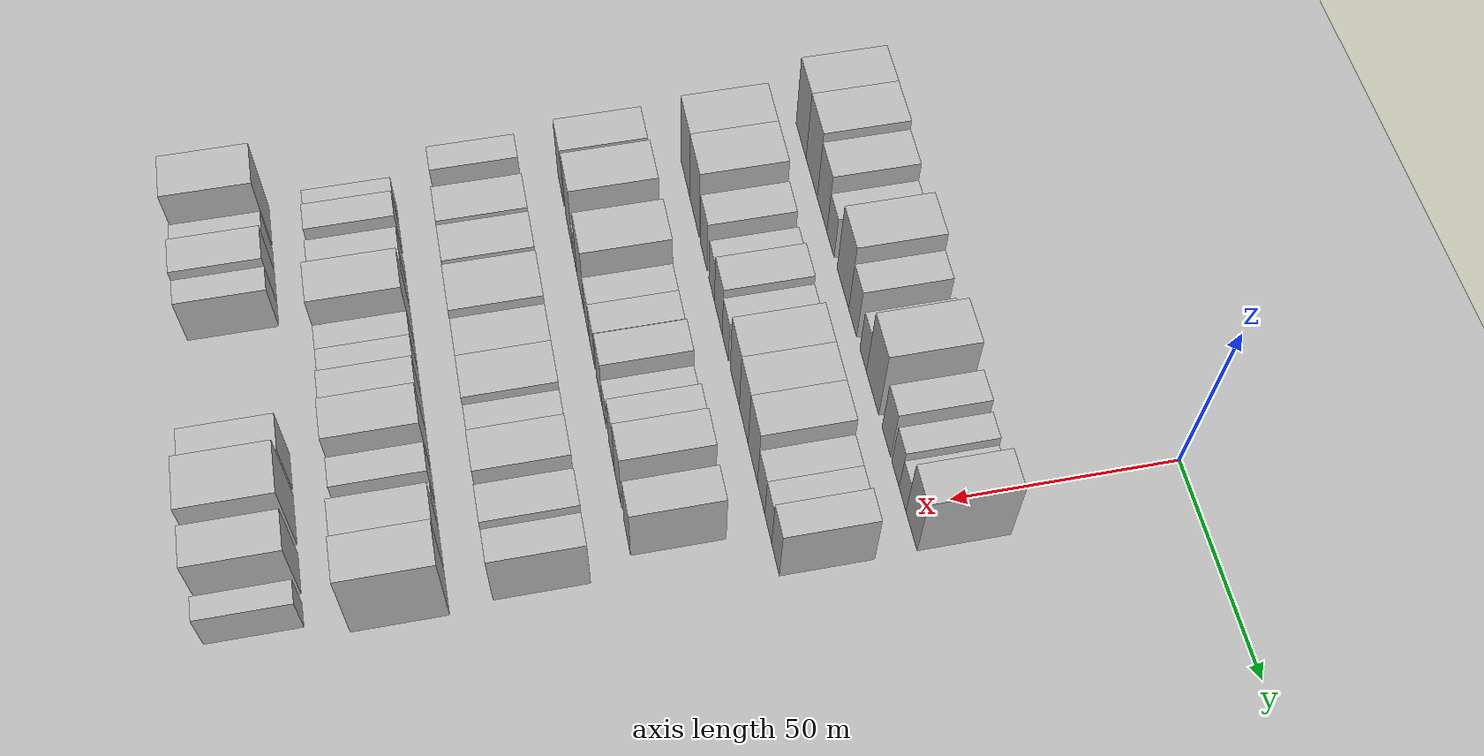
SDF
<sdf version="1.6">
 <world name="default">
  <include><name>ground_plane_1</name><uri>model://HANNAS_ground_plane</uri></include>
  <include>
   <name>ground_plane_2</name>
   <uri>model://HANNAS_ground_plane</uri>
   <pose>100 0 0  0 0 0</pose>
  </include>
  <model name="building_44">
   <static>1</static>
   <pose>50.0000 -98.3542 0 0.000000 0.000000 0.000000</pose>
   <link name="link">
    <pose>0 0 12.00 0 0 0</pose>
    <collision name="collision"><geometry><box><size>20.0000 10.7092 24.0000</size></box></geometry></collision>
    <visual name="visual">
     <cast_shadows>0</cast_shadows>
     <geometry><box><size>20.0000 10.7092 24.0000</size></box></geometry>
     <material>
      <script>
       <uri>model://HANNAS_wall/materials/scripts</uri>
       <uri>model://HANNAS_wall/materials/textures</uri>
       <name>vrc/HANNAS_wall</name>
      </script>
     </material>
    </visual>
   </link>
  </model>
  <model name="building_45">
   <static>1</static>
   <pose>50.0000 -87.1570 0 0.000000 0.000000 0.000000</pose>
   <link name="link">
    <pose>0 0 12.00 0 0 0</pose>
    <collision name="collision"><geometry><box><size>20.0000 11.6851 24.0000</size></box></geometry></collision>
    <visual name="visual">
     <cast_shadows>0</cast_shadows>
     <geometry><box><size>20.0000 11.6851 24.0000</size></box></geometry>
     <material>
      <script>
       <uri>model://HANNAS_wall/materials/scripts</uri>
       <uri>model://HANNAS_wall/materials/textures</uri>
       <name>vrc/HANNAS_wall</name>
      </script>
     </material>
    </visual>
   </link>
  </model>
  <model name="building_46">
   <static>1</static>
   <pose>50.0000 -76.3890 0 0.000000 0.000000 0.000000</pose>
   <link name="link">
    <pose>0 0 10.50 0 0 0</pose>
    <collision name="collision"><geometry><box><size>20.0000 9.8509 21.0000</size></box></geometry></collision>
    <visual name="visual">
     <cast_shadows>0</cast_shadows>
     <geometry><box><size>20.0000 9.8509 21.0000</size></box></geometry>
     <material>
      <script>
       <uri>model://HANNAS_wall/materials/scripts</uri>
       <uri>model://HANNAS_wall/materials/textures</uri>
       <name>vrc/HANNAS_wall</name>
      </script>
     </material>
    </visual>
   </link>
  </model>
  <model name="building_47">
   <static>1</static>
   <pose>50.0000 -67.8489 0 0.000000 0.000000 0.000000</pose>
   <link name="link">
    <pose>0 0 7.50 0 0 0</pose>
    <collision name="collision"><geometry><box><size>20.0000 7.2293 15.0000</size></box></geometry></collision>
    <visual name="visual">
     <cast_shadows>0</cast_shadows>
     <geometry><box><size>20.0000 7.2293 15.0000</size></box></geometry>
     <material>
      <script>
       <uri>model://HANNAS_wall/materials/scripts</uri>
       <uri>model://HANNAS_wall/materials/textures</uri>
       <name>vrc/HANNAS_wall</name>
      </script>
     </material>
    </visual>
   </link>
  </model>
  <model name="building_48">
   <static>1</static>
   <pose>50.0000 -55.6223 0 0.000000 0.000000 0.000000</pose>
   <link name="link">
    <pose>0 0 12.00 0 0 0</pose>
    <collision name="collision"><geometry><box><size>20.0000 11.2239 24.0000</size></box></geometry></collision>
    <visual name="visual">
     <cast_shadows>0</cast_shadows>
     <geometry><box><size>20.0000 11.2239 24.0000</size></box></geometry>
     <material>
      <script>
       <uri>model://HANNAS_wall/materials/scripts</uri>
       <uri>model://HANNAS_wall/materials/textures</uri>
       <name>vrc/HANNAS_wall</name>
      </script>
     </material>
    </visual>
   </link>
  </model>
  <model name="building_49">
   <static>1</static>
   <pose>50.0000 -46.2444 0 0.000000 0.000000 0.000000</pose>
   <link name="link">
    <pose>0 0 9.00 0 0 0</pose>
    <collision name="collision"><geometry><box><size>20.0000 7.5320 18.0000</size></box></geometry></collision>
    <visual name="visual">
     <cast_shadows>0</cast_shadows>
     <geometry><box><size>20.0000 7.5320 18.0000</size></box></geometry>
     <material>
      <script>
       <uri>model://HANNAS_wall/materials/scripts</uri>
       <uri>model://HANNAS_wall/materials/textures</uri>
       <name>vrc/HANNAS_wall</name>
      </script>
     </material>
    </visual>
   </link>
  </model>
  <model name="building_50">
   <static>1</static>
   <pose>50.0000 -36.4417 0 0.000000 0.000000 0.000000</pose>
   <link name="link">
    <pose>0 0 7.50 0 0 0</pose>
    <collision name="collision"><geometry><box><size>20.0000 6.0735 15.0000</size></box></geometry></collision>
    <visual name="visual">
     <cast_shadows>0</cast_shadows>
     <geometry><box><size>20.0000 6.0735 15.0000</size></box></geometry>
     <material>
      <script>
       <uri>model://HANNAS_wall/materials/scripts</uri>
       <uri>model://HANNAS_wall/materials/textures</uri>
       <name>vrc/HANNAS_wall</name>
      </script>
     </material>
    </visual>
   </link>
  </model>
  <model name="building_51">
   <static>1</static>
   <pose>50.0000 -27.8733 0 0.000000 0.000000 0.000000</pose>
   <link name="link">
    <pose>0 0 12.00 0 0 0</pose>
    <collision name="collision"><geometry><box><size>20.0000 11.0633 24.0000</size></box></geometry></collision>
    <visual name="visual">
     <cast_shadows>0</cast_shadows>
     <geometry><box><size>20.0000 11.0633 24.0000</size></box></geometry>
     <material>
      <script>
       <uri>model://HANNAS_wall/materials/scripts</uri>
       <uri>model://HANNAS_wall/materials/textures</uri>
       <name>vrc/HANNAS_wall</name>
      </script>
     </material>
    </visual>
   </link>
  </model>
  <model name="building_52">
   <static>1</static>
   <pose>50.0000 -15.6180 0 0.000000 0.000000 0.000000</pose>
   <link name="link">
    <pose>0 0 9.00 0 0 0</pose>
    <collision name="collision"><geometry><box><size>20.0000 7.4472 18.0000</size></box></geometry></collision>
    <visual name="visual">
     <cast_shadows>0</cast_shadows>
     <geometry><box><size>20.0000 7.4472 18.0000</size></box></geometry>
     <material>
      <script>
       <uri>model://HANNAS_wall/materials/scripts</uri>
       <uri>model://HANNAS_wall/materials/textures</uri>
       <name>vrc/HANNAS_wall</name>
      </script>
     </material>
    </visual>
   </link>
  </model>
  <model name="building_53">
   <static>1</static>
   <pose>50.0000 -7.7616 0 0.000000 0.000000 0.000000</pose>
   <link name="link">
    <pose>0 0 7.50 0 0 0</pose>
    <collision name="collision"><geometry><box><size>20.0000 6.2656 15.0000</size></box></geometry></collision>
    <visual name="visual">
     <cast_shadows>0</cast_shadows>
     <geometry><box><size>20.0000 6.2656 15.0000</size></box></geometry>
     <material>
      <script>
       <uri>model://HANNAS_wall/materials/scripts</uri>
       <uri>model://HANNAS_wall/materials/textures</uri>
       <name>vrc/HANNAS_wall</name>
      </script>
     </material>
    </visual>
   </link>
  </model>
  <model name="building_54">
   <static>1</static>
   <pose>50.0000 -1.7611 0 0.000000 0.000000 0.000000</pose>
   <link name="link">
    <pose>0 0 6.00 0 0 0</pose>
    <collision name="collision"><geometry><box><size>20.0000 5.7353 12.0000</size></box></geometry></collision>
    <visual name="visual">
     <cast_shadows>0</cast_shadows>
     <geometry><box><size>20.0000 5.7353 12.0000</size></box></geometry>
     <material>
      <script>
       <uri>model://HANNAS_wall/materials/scripts</uri>
       <uri>model://HANNAS_wall/materials/textures</uri>
       <name>vrc/HANNAS_wall</name>
      </script>
     </material>
    </visual>
   </link>
  </model>
  <model name="building_55">
   <static>1</static>
   <pose>50.0000 5.7008 0 0.000000 0.000000 0.000000</pose>
   <link name="link">
    <pose>0 0 10.50 0 0 0</pose>
    <collision name="collision"><geometry><box><size>20.0000 9.1887 21.0000</size></box></geometry></collision>
    <visual name="visual">
     <cast_shadows>0</cast_shadows>
     <geometry><box><size>20.0000 9.1887 21.0000</size></box></geometry>
     <material>
      <script>
       <uri>model://HANNAS_wall/materials/scripts</uri>
       <uri>model://HANNAS_wall/materials/textures</uri>
       <name>vrc/HANNAS_wall</name>
      </script>
     </material>
    </visual>
   </link>
  </model>
  <model name="building_154">
   <static>1</static>
   <pose>79.0000 -92.3246 0 0.000000 0.000000 0.000000</pose>
   <link name="link">
    <pose>0 0 12.00 0 0 0</pose>
    <collision name="collision"><geometry><box><size>20.0000 11.0729 24.0000</size></box></geometry></collision>
    <visual name="visual">
     <cast_shadows>0</cast_shadows>
     <geometry><box><size>20.0000 11.0729 24.0000</size></box></geometry>
     <material>
      <script>
       <uri>model://HANNAS_wall/materials/scripts</uri>
       <uri>model://HANNAS_wall/materials/textures</uri>
       <name>vrc/HANNAS_wall</name>
      </script>
     </material>
    </visual>
   </link>
  </model>
  <model name="building_155">
   <static>1</static>
   <pose>79.0000 -81.0688 0 0.000000 0.000000 0.000000</pose>
   <link name="link">
    <pose>0 0 12.00 0 0 0</pose>
    <collision name="collision"><geometry><box><size>20.0000 11.4387 24.0000</size></box></geometry></collision>
    <visual name="visual">
     <cast_shadows>0</cast_shadows>
     <geometry><box><size>20.0000 11.4387 24.0000</size></box></geometry>
     <material>
      <script>
       <uri>model://HANNAS_wall/materials/scripts</uri>
       <uri>model://HANNAS_wall/materials/textures</uri>
       <name>vrc/HANNAS_wall</name>
      </script>
     </material>
    </visual>
   </link>
  </model>
  <model name="building_156">
   <static>1</static>
   <pose>79.0000 -70.1535 0 0.000000 0.000000 0.000000</pose>
   <link name="link">
    <pose>0 0 9.00 0 0 0</pose>
    <collision name="collision"><geometry><box><size>20.0000 8.3920 18.0000</size></box></geometry></collision>
    <visual name="visual">
     <cast_shadows>0</cast_shadows>
     <geometry><box><size>20.0000 8.3920 18.0000</size></box></geometry>
     <material>
      <script>
       <uri>model://HANNAS_wall/materials/scripts</uri>
       <uri>model://HANNAS_wall/materials/textures</uri>
       <name>vrc/HANNAS_wall</name>
      </script>
     </material>
    </visual>
   </link>
  </model>
  <model name="building_157">
   <static>1</static>
   <pose>79.0000 -60.6841 0 0.000000 0.000000 0.000000</pose>
   <link name="link">
    <pose>0 0 7.50 0 0 0</pose>
    <collision name="collision"><geometry><box><size>20.0000 6.5468 15.0000</size></box></geometry></collision>
    <visual name="visual">
     <cast_shadows>0</cast_shadows>
     <geometry><box><size>20.0000 6.5468 15.0000</size></box></geometry>
     <material>
      <script>
       <uri>model://HANNAS_wall/materials/scripts</uri>
       <uri>model://HANNAS_wall/materials/textures</uri>
       <name>vrc/HANNAS_wall</name>
      </script>
     </material>
    </visual>
   </link>
  </model>
  <model name="building_158">
   <static>1</static>
   <pose>79.0000 -53.0304 0 0.000000 0.000000 0.000000</pose>
   <link name="link">
    <pose>0 0 9.00 0 0 0</pose>
    <collision name="collision"><geometry><box><size>20.0000 8.7606 18.0000</size></box></geometry></collision>
    <visual name="visual">
     <cast_shadows>0</cast_shadows>
     <geometry><box><size>20.0000 8.7606 18.0000</size></box></geometry>
     <material>
      <script>
       <uri>model://HANNAS_wall/materials/scripts</uri>
       <uri>model://HANNAS_wall/materials/textures</uri>
       <name>vrc/HANNAS_wall</name>
      </script>
     </material>
    </visual>
   </link>
  </model>
  <model name="building_159">
   <static>1</static>
   <pose>79.0000 -45.2045 0 0.000000 0.000000 0.000000</pose>
   <link name="link">
    <pose>0 0 7.50 0 0 0</pose>
    <collision name="collision"><geometry><box><size>20.0000 6.8911 15.0000</size></box></geometry></collision>
    <visual name="visual">
     <cast_shadows>0</cast_shadows>
     <geometry><box><size>20.0000 6.8911 15.0000</size></box></geometry>
     <material>
      <script>
       <uri>model://HANNAS_wall/materials/scripts</uri>
       <uri>model://HANNAS_wall/materials/textures</uri>
       <name>vrc/HANNAS_wall</name>
      </script>
     </material>
    </visual>
   </link>
  </model>
  <model name="building_160">
   <static>1</static>
   <pose>79.0000 -34.8429 0 0.000000 0.000000 0.000000</pose>
   <link name="link">
    <pose>0 0 10.50 0 0 0</pose>
    <collision name="collision"><geometry><box><size>20.0000 9.8321 21.0000</size></box></geometry></collision>
    <visual name="visual">
     <cast_shadows>0</cast_shadows>
     <geometry><box><size>20.0000 9.8321 21.0000</size></box></geometry>
     <material>
      <script>
       <uri>model://HANNAS_wall/materials/scripts</uri>
       <uri>model://HANNAS_wall/materials/textures</uri>
       <name>vrc/HANNAS_wall</name>
      </script>
     </material>
    </visual>
   </link>
  </model>
  <model name="building_161">
   <static>1</static>
   <pose>79.0000 -25.2623 0 0.000000 0.000000 0.000000</pose>
   <link name="link">
    <pose>0 0 10.50 0 0 0</pose>
    <collision name="collision"><geometry><box><size>20.0000 9.3291 21.0000</size></box></geometry></collision>
    <visual name="visual">
     <cast_shadows>0</cast_shadows>
     <geometry><box><size>20.0000 9.3291 21.0000</size></box></geometry>
     <material>
      <script>
       <uri>model://HANNAS_wall/materials/scripts</uri>
       <uri>model://HANNAS_wall/materials/textures</uri>
       <name>vrc/HANNAS_wall</name>
      </script>
     </material>
    </visual>
   </link>
  </model>
  <model name="building_162">
   <static>1</static>
   <pose>79.0000 -15.7878 0 0.000000 0.000000 0.000000</pose>
   <link name="link">
    <pose>0 0 10.50 0 0 0</pose>
    <collision name="collision"><geometry><box><size>20.0000 9.6199 21.0000</size></box></geometry></collision>
    <visual name="visual">
     <cast_shadows>0</cast_shadows>
     <geometry><box><size>20.0000 9.6199 21.0000</size></box></geometry>
     <material>
      <script>
       <uri>model://HANNAS_wall/materials/scripts</uri>
       <uri>model://HANNAS_wall/materials/textures</uri>
       <name>vrc/HANNAS_wall</name>
      </script>
     </material>
    </visual>
   </link>
  </model>
  <model name="building_163">
   <static>1</static>
   <pose>79.0000 -7.3257 0 0.000000 0.000000 0.000000</pose>
   <link name="link">
    <pose>0 0 7.50 0 0 0</pose>
    <collision name="collision"><geometry><box><size>20.0000 7.3044 15.0000</size></box></geometry></collision>
    <visual name="visual">
     <cast_shadows>0</cast_shadows>
     <geometry><box><size>20.0000 7.3044 15.0000</size></box></geometry>
     <material>
      <script>
       <uri>model://HANNAS_wall/materials/scripts</uri>
       <uri>model://HANNAS_wall/materials/textures</uri>
       <name>vrc/HANNAS_wall</name>
      </script>
     </material>
    </visual>
   </link>
  </model>
  <model name="building_164">
   <static>1</static>
   <pose>79.0000 -0.2682 0 0.000000 0.000000 0.000000</pose>
   <link name="link">
    <pose>0 0 7.50 0 0 0</pose>
    <collision name="collision"><geometry><box><size>20.0000 6.8105 15.0000</size></box></geometry></collision>
    <visual name="visual">
     <cast_shadows>0</cast_shadows>
     <geometry><box><size>20.0000 6.8105 15.0000</size></box></geometry>
     <material>
      <script>
       <uri>model://HANNAS_wall/materials/scripts</uri>
       <uri>model://HANNAS_wall/materials/textures</uri>
       <name>vrc/HANNAS_wall</name>
      </script>
     </material>
    </visual>
   </link>
  </model>
  <model name="building_165">
   <static>1</static>
   <pose>79.0000 6.8495 0 0.000000 0.000000 0.000000</pose>
   <link name="link">
    <pose>0 0 9.00 0 0 0</pose>
    <collision name="collision"><geometry><box><size>20.0000 7.4250 18.0000</size></box></geometry></collision>
    <visual name="visual">
     <cast_shadows>0</cast_shadows>
     <geometry><box><size>20.0000 7.4250 18.0000</size></box></geometry>
     <material>
      <script>
       <uri>model://HANNAS_wall/materials/scripts</uri>
       <uri>model://HANNAS_wall/materials/textures</uri>
       <name>vrc/HANNAS_wall</name>
      </script>
     </material>
    </visual>
   </link>
  </model>
  <model name="building_266">
   <static>1</static>
   <pose>108.0000 -94.3839 0 0.000000 0.000000 0.000000</pose>
   <link name="link">
    <pose>0 0 10.50 0 0 0</pose>
    <collision name="collision"><geometry><box><size>20.0000 9.1395 21.0000</size></box></geometry></collision>
    <visual name="visual">
     <cast_shadows>0</cast_shadows>
     <geometry><box><size>20.0000 9.1395 21.0000</size></box></geometry>
     <material>
      <script>
       <uri>model://HANNAS_wall/materials/scripts</uri>
       <uri>model://HANNAS_wall/materials/textures</uri>
       <name>vrc/HANNAS_wall</name>
      </script>
     </material>
    </visual>
   </link>
  </model>
  <model name="building_267">
   <static>1</static>
   <pose>108.0000 -81.4635 0 0.000000 0.000000 0.000000</pose>
   <link name="link">
    <pose>0 0 12.00 0 0 0</pose>
    <collision name="collision"><geometry><box><size>20.0000 10.7014 24.0000</size></box></geometry></collision>
    <visual name="visual">
     <cast_shadows>0</cast_shadows>
     <geometry><box><size>20.0000 10.7014 24.0000</size></box></geometry>
     <material>
      <script>
       <uri>model://HANNAS_wall/materials/scripts</uri>
       <uri>model://HANNAS_wall/materials/textures</uri>
       <name>vrc/HANNAS_wall</name>
      </script>
     </material>
    </visual>
   </link>
  </model>
  <model name="building_268">
   <static>1</static>
   <pose>108.0000 -73.2701 0 0.000000 0.000000 0.000000</pose>
   <link name="link">
    <pose>0 0 6.00 0 0 0</pose>
    <collision name="collision"><geometry><box><size>20.0000 5.6854 12.0000</size></box></geometry></collision>
    <visual name="visual">
     <cast_shadows>0</cast_shadows>
     <geometry><box><size>20.0000 5.6854 12.0000</size></box></geometry>
     <material>
      <script>
       <uri>model://HANNAS_wall/materials/scripts</uri>
       <uri>model://HANNAS_wall/materials/textures</uri>
       <name>vrc/HANNAS_wall</name>
      </script>
     </material>
    </visual>
   </link>
  </model>
  <model name="building_269">
   <static>1</static>
   <pose>108.0000 -64.9830 0 0.000000 0.000000 0.000000</pose>
   <link name="link">
    <pose>0 0 12.00 0 0 0</pose>
    <collision name="collision"><geometry><box><size>20.0000 10.8887 24.0000</size></box></geometry></collision>
    <visual name="visual">
     <cast_shadows>0</cast_shadows>
     <geometry><box><size>20.0000 10.8887 24.0000</size></box></geometry>
     <material>
      <script>
       <uri>model://HANNAS_wall/materials/scripts</uri>
       <uri>model://HANNAS_wall/materials/textures</uri>
       <name>vrc/HANNAS_wall</name>
      </script>
     </material>
    </visual>
   </link>
  </model>
  <model name="building_270">
   <static>1</static>
   <pose>108.0000 -56.0109 0 0.000000 0.000000 0.000000</pose>
   <link name="link">
    <pose>0 0 7.50 0 0 0</pose>
    <collision name="collision"><geometry><box><size>20.0000 7.0555 15.0000</size></box></geometry></collision>
    <visual name="visual">
     <cast_shadows>0</cast_shadows>
     <geometry><box><size>20.0000 7.0555 15.0000</size></box></geometry>
     <material>
      <script>
       <uri>model://HANNAS_wall/materials/scripts</uri>
       <uri>model://HANNAS_wall/materials/textures</uri>
       <name>vrc/HANNAS_wall</name>
      </script>
     </material>
    </visual>
   </link>
  </model>
  <model name="building_271">
   <static>1</static>
   <pose>108.0000 -48.7577 0 0.000000 0.000000 0.000000</pose>
   <link name="link">
    <pose>0 0 7.50 0 0 0</pose>
    <collision name="collision"><geometry><box><size>20.0000 7.4510 15.0000</size></box></geometry></collision>
    <visual name="visual">
     <cast_shadows>0</cast_shadows>
     <geometry><box><size>20.0000 7.4510 15.0000</size></box></geometry>
     <material>
      <script>
       <uri>model://HANNAS_wall/materials/scripts</uri>
       <uri>model://HANNAS_wall/materials/textures</uri>
       <name>vrc/HANNAS_wall</name>
      </script>
     </material>
    </visual>
   </link>
  </model>
  <model name="building_272">
   <static>1</static>
   <pose>108.0000 -39.0699 0 0.000000 0.000000 0.000000</pose>
   <link name="link">
    <pose>0 0 9.00 0 0 0</pose>
    <collision name="collision"><geometry><box><size>20.0000 7.9245 18.0000</size></box></geometry></collision>
    <visual name="visual">
     <cast_shadows>0</cast_shadows>
     <geometry><box><size>20.0000 7.9245 18.0000</size></box></geometry>
     <material>
      <script>
       <uri>model://HANNAS_wall/materials/scripts</uri>
       <uri>model://HANNAS_wall/materials/textures</uri>
       <name>vrc/HANNAS_wall</name>
      </script>
     </material>
    </visual>
   </link>
  </model>
  <model name="building_273">
   <static>1</static>
   <pose>108.0000 -32.5242 0 0.000000 0.000000 0.000000</pose>
   <link name="link">
    <pose>0 0 6.00 0 0 0</pose>
    <collision name="collision"><geometry><box><size>20.0000 5.1668 12.0000</size></box></geometry></collision>
    <visual name="visual">
     <cast_shadows>0</cast_shadows>
     <geometry><box><size>20.0000 5.1668 12.0000</size></box></geometry>
     <material>
      <script>
       <uri>model://HANNAS_wall/materials/scripts</uri>
       <uri>model://HANNAS_wall/materials/textures</uri>
       <name>vrc/HANNAS_wall</name>
      </script>
     </material>
    </visual>
   </link>
  </model>
  <model name="building_274">
   <static>1</static>
   <pose>108.0000 -23.1329 0 0.000000 0.000000 0.000000</pose>
   <link name="link">
    <pose>0 0 9.00 0 0 0</pose>
    <collision name="collision"><geometry><box><size>20.0000 7.6159 18.0000</size></box></geometry></collision>
    <visual name="visual">
     <cast_shadows>0</cast_shadows>
     <geometry><box><size>20.0000 7.6159 18.0000</size></box></geometry>
     <material>
      <script>
       <uri>model://HANNAS_wall/materials/scripts</uri>
       <uri>model://HANNAS_wall/materials/textures</uri>
       <name>vrc/HANNAS_wall</name>
      </script>
     </material>
    </visual>
   </link>
  </model>
  <model name="building_275">
   <static>1</static>
   <pose>108.0000 -14.9984 0 0.000000 0.000000 0.000000</pose>
   <link name="link">
    <pose>0 0 10.50 0 0 0</pose>
    <collision name="collision"><geometry><box><size>20.0000 8.6531 21.0000</size></box></geometry></collision>
    <visual name="visual">
     <cast_shadows>0</cast_shadows>
     <geometry><box><size>20.0000 8.6531 21.0000</size></box></geometry>
     <material>
      <script>
       <uri>model://HANNAS_wall/materials/scripts</uri>
       <uri>model://HANNAS_wall/materials/textures</uri>
       <name>vrc/HANNAS_wall</name>
      </script>
     </material>
    </visual>
   </link>
  </model>
  <model name="building_276">
   <static>1</static>
   <pose>108.0000 -3.6330 0 0.000000 0.000000 0.000000</pose>
   <link name="link">
    <pose>0 0 9.00 0 0 0</pose>
    <collision name="collision"><geometry><box><size>20.0000 8.0776 18.0000</size></box></geometry></collision>
    <visual name="visual">
     <cast_shadows>0</cast_shadows>
     <geometry><box><size>20.0000 8.0776 18.0000</size></box></geometry>
     <material>
      <script>
       <uri>model://HANNAS_wall/materials/scripts</uri>
       <uri>model://HANNAS_wall/materials/textures</uri>
       <name>vrc/HANNAS_wall</name>
      </script>
     </material>
    </visual>
   </link>
  </model>
  <model name="building_374">
   <static>1</static>
   <pose>137.0000 -97.9630 0 0.000000 0.000000 0.000000</pose>
   <link name="link">
    <pose>0 0 7.50 0 0 0</pose>
    <collision name="collision"><geometry><box><size>20.0000 6.7368 15.0000</size></box></geometry></collision>
    <visual name="visual">
     <cast_shadows>0</cast_shadows>
     <geometry><box><size>20.0000 6.7368 15.0000</size></box></geometry>
     <material>
      <script>
       <uri>model://HANNAS_wall/materials/scripts</uri>
       <uri>model://HANNAS_wall/materials/textures</uri>
       <name>vrc/HANNAS_wall</name>
      </script>
     </material>
    </visual>
   </link>
  </model>
  <model name="building_375">
   <static>1</static>
   <pose>137.0000 -88.9194 0 0.000000 0.000000 0.000000</pose>
   <link name="link">
    <pose>0 0 6.00 0 0 0</pose>
    <collision name="collision"><geometry><box><size>20.0000 5.3505 12.0000</size></box></geometry></collision>
    <visual name="visual">
     <cast_shadows>0</cast_shadows>
     <geometry><box><size>20.0000 5.3505 12.0000</size></box></geometry>
     <material>
      <script>
       <uri>model://HANNAS_wall/materials/scripts</uri>
       <uri>model://HANNAS_wall/materials/textures</uri>
       <name>vrc/HANNAS_wall</name>
      </script>
     </material>
    </visual>
   </link>
  </model>
  <model name="building_376">
   <static>1</static>
   <pose>137.0000 -80.5270 0 0.000000 0.000000 0.000000</pose>
   <link name="link">
    <pose>0 0 10.50 0 0 0</pose>
    <collision name="collision"><geometry><box><size>20.0000 9.4343 21.0000</size></box></geometry></collision>
    <visual name="visual">
     <cast_shadows>0</cast_shadows>
     <geometry><box><size>20.0000 9.4343 21.0000</size></box></geometry>
     <material>
      <script>
       <uri>model://HANNAS_wall/materials/scripts</uri>
       <uri>model://HANNAS_wall/materials/textures</uri>
       <name>vrc/HANNAS_wall</name>
      </script>
     </material>
    </visual>
   </link>
  </model>
  <model name="building_377">
   <static>1</static>
   <pose>137.0000 -70.0229 0 0.000000 0.000000 0.000000</pose>
   <link name="link">
    <pose>0 0 10.50 0 0 0</pose>
    <collision name="collision"><geometry><box><size>20.0000 9.5740 21.0000</size></box></geometry></collision>
    <visual name="visual">
     <cast_shadows>0</cast_shadows>
     <geometry><box><size>20.0000 9.5740 21.0000</size></box></geometry>
     <material>
      <script>
       <uri>model://HANNAS_wall/materials/scripts</uri>
       <uri>model://HANNAS_wall/materials/textures</uri>
       <name>vrc/HANNAS_wall</name>
      </script>
     </material>
    </visual>
   </link>
  </model>
  <model name="building_378">
   <static>1</static>
   <pose>137.0000 -56.3524 0 0.000000 0.000000 0.000000</pose>
   <link name="link">
    <pose>0 0 12.00 0 0 0</pose>
    <collision name="collision"><geometry><box><size>20.0000 11.7671 24.0000</size></box></geometry></collision>
    <visual name="visual">
     <cast_shadows>0</cast_shadows>
     <geometry><box><size>20.0000 11.7671 24.0000</size></box></geometry>
     <material>
      <script>
       <uri>model://HANNAS_wall/materials/scripts</uri>
       <uri>model://HANNAS_wall/materials/textures</uri>
       <name>vrc/HANNAS_wall</name>
      </script>
     </material>
    </visual>
   </link>
  </model>
  <model name="building_379">
   <static>1</static>
   <pose>137.0000 -45.8564 0 0.000000 0.000000 0.000000</pose>
   <link name="link">
    <pose>0 0 10.50 0 0 0</pose>
    <collision name="collision"><geometry><box><size>20.0000 9.2249 21.0000</size></box></geometry></collision>
    <visual name="visual">
     <cast_shadows>0</cast_shadows>
     <geometry><box><size>20.0000 9.2249 21.0000</size></box></geometry>
     <material>
      <script>
       <uri>model://HANNAS_wall/materials/scripts</uri>
       <uri>model://HANNAS_wall/materials/textures</uri>
       <name>vrc/HANNAS_wall</name>
      </script>
     </material>
    </visual>
   </link>
  </model>
  <model name="building_380">
   <static>1</static>
   <pose>137.0000 -36.1352 0 0.000000 0.000000 0.000000</pose>
   <link name="link">
    <pose>0 0 10.50 0 0 0</pose>
    <collision name="collision"><geometry><box><size>20.0000 10.2176 21.0000</size></box></geometry></collision>
    <visual name="visual">
     <cast_shadows>0</cast_shadows>
     <geometry><box><size>20.0000 10.2176 21.0000</size></box></geometry>
     <material>
      <script>
       <uri>model://HANNAS_wall/materials/scripts</uri>
       <uri>model://HANNAS_wall/materials/textures</uri>
       <name>vrc/HANNAS_wall</name>
      </script>
     </material>
    </visual>
   </link>
  </model>
  <model name="building_381">
   <static>1</static>
   <pose>137.0000 -27.2197 0 0.000000 0.000000 0.000000</pose>
   <link name="link">
    <pose>0 0 9.00 0 0 0</pose>
    <collision name="collision"><geometry><box><size>20.0000 7.6134 18.0000</size></box></geometry></collision>
    <visual name="visual">
     <cast_shadows>0</cast_shadows>
     <geometry><box><size>20.0000 7.6134 18.0000</size></box></geometry>
     <material>
      <script>
       <uri>model://HANNAS_wall/materials/scripts</uri>
       <uri>model://HANNAS_wall/materials/textures</uri>
       <name>vrc/HANNAS_wall</name>
      </script>
     </material>
    </visual>
   </link>
  </model>
  <model name="building_382">
   <static>1</static>
   <pose>137.0000 -18.6275 0 0.000000 0.000000 0.000000</pose>
   <link name="link">
    <pose>0 0 10.50 0 0 0</pose>
    <collision name="collision"><geometry><box><size>20.0000 9.5710 21.0000</size></box></geometry></collision>
    <visual name="visual">
     <cast_shadows>0</cast_shadows>
     <geometry><box><size>20.0000 9.5710 21.0000</size></box></geometry>
     <material>
      <script>
       <uri>model://HANNAS_wall/materials/scripts</uri>
       <uri>model://HANNAS_wall/materials/textures</uri>
       <name>vrc/HANNAS_wall</name>
      </script>
     </material>
    </visual>
   </link>
  </model>
  <model name="building_383">
   <static>1</static>
   <pose>137.0000 -6.6110 0 0.000000 0.000000 0.000000</pose>
   <link name="link">
    <pose>0 0 10.50 0 0 0</pose>
    <collision name="collision"><geometry><box><size>20.0000 8.4620 21.0000</size></box></geometry></collision>
    <visual name="visual">
     <cast_shadows>0</cast_shadows>
     <geometry><box><size>20.0000 8.4620 21.0000</size></box></geometry>
     <material>
      <script>
       <uri>model://HANNAS_wall/materials/scripts</uri>
       <uri>model://HANNAS_wall/materials/textures</uri>
       <name>vrc/HANNAS_wall</name>
      </script>
     </material>
    </visual>
   </link>
  </model>
  <model name="building_384">
   <static>1</static>
   <pose>137.0000 1.3209 0 0.000000 0.000000 0.000000</pose>
   <link name="link">
    <pose>0 0 9.00 0 0 0</pose>
    <collision name="collision"><geometry><box><size>20.0000 7.4017 18.0000</size></box></geometry></collision>
    <visual name="visual">
     <cast_shadows>0</cast_shadows>
     <geometry><box><size>20.0000 7.4017 18.0000</size></box></geometry>
     <material>
      <script>
       <uri>model://HANNAS_wall/materials/scripts</uri>
       <uri>model://HANNAS_wall/materials/textures</uri>
       <name>vrc/HANNAS_wall</name>
      </script>
     </material>
    </visual>
   </link>
  </model>
  <model name="building_493">
   <static>1</static>
   <pose>166.0000 -94.0688 0 0.000000 0.000000 0.000000</pose>
   <link name="link">
    <pose>0 0 6.00 0 0 0</pose>
    <collision name="collision"><geometry><box><size>20.0000 5.1511 12.0000</size></box></geometry></collision>
    <visual name="visual">
     <cast_shadows>0</cast_shadows>
     <geometry><box><size>20.0000 5.1511 12.0000</size></box></geometry>
     <material>
      <script>
       <uri>model://HANNAS_wall/materials/scripts</uri>
       <uri>model://HANNAS_wall/materials/textures</uri>
       <name>vrc/HANNAS_wall</name>
      </script>
     </material>
    </visual>
   </link>
  </model>
  <model name="building_494">
   <static>1</static>
   <pose>166.0000 -87.0250 0 0.000000 0.000000 0.000000</pose>
   <link name="link">
    <pose>0 0 7.50 0 0 0</pose>
    <collision name="collision"><geometry><box><size>20.0000 6.9364 15.0000</size></box></geometry></collision>
    <visual name="visual">
     <cast_shadows>0</cast_shadows>
     <geometry><box><size>20.0000 6.9364 15.0000</size></box></geometry>
     <material>
      <script>
       <uri>model://HANNAS_wall/materials/scripts</uri>
       <uri>model://HANNAS_wall/materials/textures</uri>
       <name>vrc/HANNAS_wall</name>
      </script>
     </material>
    </visual>
   </link>
  </model>
  <model name="building_495">
   <static>1</static>
   <pose>166.0000 -77.4906 0 0.000000 0.000000 0.000000</pose>
   <link name="link">
    <pose>0 0 7.50 0 0 0</pose>
    <collision name="collision"><geometry><box><size>20.0000 6.1324 15.0000</size></box></geometry></collision>
    <visual name="visual">
     <cast_shadows>0</cast_shadows>
     <geometry><box><size>20.0000 6.1324 15.0000</size></box></geometry>
     <material>
      <script>
       <uri>model://HANNAS_wall/materials/scripts</uri>
       <uri>model://HANNAS_wall/materials/textures</uri>
       <name>vrc/HANNAS_wall</name>
      </script>
     </material>
    </visual>
   </link>
  </model>
  <model name="building_496">
   <static>1</static>
   <pose>166.0000 -71.3584 0 0.000000 0.000000 0.000000</pose>
   <link name="link">
    <pose>0 0 7.50 0 0 0</pose>
    <collision name="collision"><geometry><box><size>20.0000 6.1320 15.0000</size></box></geometry></collision>
    <visual name="visual">
     <cast_shadows>0</cast_shadows>
     <geometry><box><size>20.0000 6.1320 15.0000</size></box></geometry>
     <material>
      <script>
       <uri>model://HANNAS_wall/materials/scripts</uri>
       <uri>model://HANNAS_wall/materials/textures</uri>
       <name>vrc/HANNAS_wall</name>
      </script>
     </material>
    </visual>
   </link>
  </model>
  <model name="building_497">
   <static>1</static>
   <pose>166.0000 -63.1954 0 0.000000 0.000000 0.000000</pose>
   <link name="link">
    <pose>0 0 12.00 0 0 0</pose>
    <collision name="collision"><geometry><box><size>20.0000 10.1941 24.0000</size></box></geometry></collision>
    <visual name="visual">
     <cast_shadows>0</cast_shadows>
     <geometry><box><size>20.0000 10.1941 24.0000</size></box></geometry>
     <material>
      <script>
       <uri>model://HANNAS_wall/materials/scripts</uri>
       <uri>model://HANNAS_wall/materials/textures</uri>
       <name>vrc/HANNAS_wall</name>
      </script>
     </material>
    </visual>
   </link>
  </model>
  <model name="building_498">
   <static>1</static>
   <pose>166.0000 -55.0891 0 0.000000 0.000000 0.000000</pose>
   <link name="link">
    <pose>0 0 7.50 0 0 0</pose>
    <collision name="collision"><geometry><box><size>20.0000 6.0185 15.0000</size></box></geometry></collision>
    <visual name="visual">
     <cast_shadows>0</cast_shadows>
     <geometry><box><size>20.0000 6.0185 15.0000</size></box></geometry>
     <material>
      <script>
       <uri>model://HANNAS_wall/materials/scripts</uri>
       <uri>model://HANNAS_wall/materials/textures</uri>
       <name>vrc/HANNAS_wall</name>
      </script>
     </material>
    </visual>
   </link>
  </model>
  <model name="building_499">
   <static>1</static>
   <pose>166.0000 -48.4509 0 0.000000 0.000000 0.000000</pose>
   <link name="link">
    <pose>0 0 7.50 0 0 0</pose>
    <collision name="collision"><geometry><box><size>20.0000 7.2579 15.0000</size></box></geometry></collision>
    <visual name="visual">
     <cast_shadows>0</cast_shadows>
     <geometry><box><size>20.0000 7.2579 15.0000</size></box></geometry>
     <material>
      <script>
       <uri>model://HANNAS_wall/materials/scripts</uri>
       <uri>model://HANNAS_wall/materials/textures</uri>
       <name>vrc/HANNAS_wall</name>
      </script>
     </material>
    </visual>
   </link>
  </model>
  <model name="building_500">
   <static>1</static>
   <pose>166.0000 -40.5835 0 0.000000 0.000000 0.000000</pose>
   <link name="link">
    <pose>0 0 9.00 0 0 0</pose>
    <collision name="collision"><geometry><box><size>20.0000 8.4769 18.0000</size></box></geometry></collision>
    <visual name="visual">
     <cast_shadows>0</cast_shadows>
     <geometry><box><size>20.0000 8.4769 18.0000</size></box></geometry>
     <material>
      <script>
       <uri>model://HANNAS_wall/materials/scripts</uri>
       <uri>model://HANNAS_wall/materials/textures</uri>
       <name>vrc/HANNAS_wall</name>
      </script>
     </material>
    </visual>
   </link>
  </model>
  <model name="building_501">
   <static>1</static>
   <pose>166.0000 -31.5547 0 0.000000 0.000000 0.000000</pose>
   <link name="link">
    <pose>0 0 10.50 0 0 0</pose>
    <collision name="collision"><geometry><box><size>20.0000 9.5807 21.0000</size></box></geometry></collision>
    <visual name="visual">
     <cast_shadows>0</cast_shadows>
     <geometry><box><size>20.0000 9.5807 21.0000</size></box></geometry>
     <material>
      <script>
       <uri>model://HANNAS_wall/materials/scripts</uri>
       <uri>model://HANNAS_wall/materials/textures</uri>
       <name>vrc/HANNAS_wall</name>
      </script>
     </material>
    </visual>
   </link>
  </model>
  <model name="building_502">
   <static>1</static>
   <pose>166.0000 -22.3465 0 0.000000 0.000000 0.000000</pose>
   <link name="link">
    <pose>0 0 7.50 0 0 0</pose>
    <collision name="collision"><geometry><box><size>20.0000 6.8358 15.0000</size></box></geometry></collision>
    <visual name="visual">
     <cast_shadows>0</cast_shadows>
     <geometry><box><size>20.0000 6.8358 15.0000</size></box></geometry>
     <material>
      <script>
       <uri>model://HANNAS_wall/materials/scripts</uri>
       <uri>model://HANNAS_wall/materials/textures</uri>
       <name>vrc/HANNAS_wall</name>
      </script>
     </material>
    </visual>
   </link>
  </model>
  <model name="building_503">
   <static>1</static>
   <pose>166.0000 -15.5095 0 0.000000 0.000000 0.000000</pose>
   <link name="link">
    <pose>0 0 6.00 0 0 0</pose>
    <collision name="collision"><geometry><box><size>20.0000 4.8380 12.0000</size></box></geometry></collision>
    <visual name="visual">
     <cast_shadows>0</cast_shadows>
     <geometry><box><size>20.0000 4.8380 12.0000</size></box></geometry>
     <material>
      <script>
       <uri>model://HANNAS_wall/materials/scripts</uri>
       <uri>model://HANNAS_wall/materials/textures</uri>
       <name>vrc/HANNAS_wall</name>
      </script>
     </material>
    </visual>
   </link>
  </model>
  <model name="building_504">
   <static>1</static>
   <pose>166.0000 -8.2252 0 0.000000 0.000000 0.000000</pose>
   <link name="link">
    <pose>0 0 10.50 0 0 0</pose>
    <collision name="collision"><geometry><box><size>20.0000 9.7307 21.0000</size></box></geometry></collision>
    <visual name="visual">
     <cast_shadows>0</cast_shadows>
     <geometry><box><size>20.0000 9.7307 21.0000</size></box></geometry>
     <material>
      <script>
       <uri>model://HANNAS_wall/materials/scripts</uri>
       <uri>model://HANNAS_wall/materials/textures</uri>
       <name>vrc/HANNAS_wall</name>
      </script>
     </material>
    </visual>
   </link>
  </model>
  <model name="building_505">
   <static>1</static>
   <pose>166.0000 1.6259 0 0.000000 0.000000 0.000000</pose>
   <link name="link">
    <pose>0 0 12.00 0 0 0</pose>
    <collision name="collision"><geometry><box><size>20.0000 9.9715 24.0000</size></box></geometry></collision>
    <visual name="visual">
     <cast_shadows>0</cast_shadows>
     <geometry><box><size>20.0000 9.9715 24.0000</size></box></geometry>
     <material>
      <script>
       <uri>model://HANNAS_wall/materials/scripts</uri>
       <uri>model://HANNAS_wall/materials/textures</uri>
       <name>vrc/HANNAS_wall</name>
      </script>
     </material>
    </visual>
   </link>
  </model>
  <model name="building_609">
   <static>1</static>
   <pose>195.0000 -96.7925 0 0.000000 0.000000 0.000000</pose>
   <link name="link">
    <pose>0 0 12.00 0 0 0</pose>
    <collision name="collision"><geometry><box><size>20.0000 11.1267 24.0000</size></box></geometry></collision>
    <visual name="visual">
     <cast_shadows>0</cast_shadows>
     <geometry><box><size>20.0000 11.1267 24.0000</size></box></geometry>
     <material>
      <script>
       <uri>model://HANNAS_wall/materials/scripts</uri>
       <uri>model://HANNAS_wall/materials/textures</uri>
       <name>vrc/HANNAS_wall</name>
      </script>
     </material>
    </visual>
   </link>
  </model>
  <model name="building_610">
   <static>1</static>
   <pose>195.0000 -87.1602 0 0.000000 0.000000 0.000000</pose>
   <link name="link">
    <pose>0 0 7.50 0 0 0</pose>
    <collision name="collision"><geometry><box><size>20.0000 6.1379 15.0000</size></box></geometry></collision>
    <visual name="visual">
     <cast_shadows>0</cast_shadows>
     <geometry><box><size>20.0000 6.1379 15.0000</size></box></geometry>
     <material>
      <script>
       <uri>model://HANNAS_wall/materials/scripts</uri>
       <uri>model://HANNAS_wall/materials/textures</uri>
       <name>vrc/HANNAS_wall</name>
      </script>
     </material>
    </visual>
   </link>
  </model>
  <model name="building_611">
   <static>1</static>
   <pose>195.0000 -79.6800 0 0.000000 0.000000 0.000000</pose>
   <link name="link">
    <pose>0 0 9.00 0 0 0</pose>
    <collision name="collision"><geometry><box><size>20.0000 8.8226 18.0000</size></box></geometry></collision>
    <visual name="visual">
     <cast_shadows>0</cast_shadows>
     <geometry><box><size>20.0000 8.8226 18.0000</size></box></geometry>
     <material>
      <script>
       <uri>model://HANNAS_wall/materials/scripts</uri>
       <uri>model://HANNAS_wall/materials/textures</uri>
       <name>vrc/HANNAS_wall</name>
      </script>
     </material>
    </visual>
   </link>
  </model>
  <model name="building_612">
   <static>1</static>
   <pose>195.0000 -72.1521 0 0.000000 0.000000 0.000000</pose>
   <link name="link">
    <pose>0 0 7.50 0 0 0</pose>
    <collision name="collision"><geometry><box><size>20.0000 6.2332 15.0000</size></box></geometry></collision>
    <visual name="visual">
     <cast_shadows>0</cast_shadows>
     <geometry><box><size>20.0000 6.2332 15.0000</size></box></geometry>
     <material>
      <script>
       <uri>model://HANNAS_wall/materials/scripts</uri>
       <uri>model://HANNAS_wall/materials/textures</uri>
       <name>vrc/HANNAS_wall</name>
      </script>
     </material>
    </visual>
   </link>
  </model>
  <model name="building_613">
   <static>1</static>
   <pose>195.0000 -31.9623 0 0.000000 0.000000 0.000000</pose>
   <link name="link">
    <pose>0 0 9.00 0 0 0</pose>
    <collision name="collision"><geometry><box><size>20.0000 8.7154 18.0000</size></box></geometry></collision>
    <visual name="visual">
     <cast_shadows>0</cast_shadows>
     <geometry><box><size>20.0000 8.7154 18.0000</size></box></geometry>
     <material>
      <script>
       <uri>model://HANNAS_wall/materials/scripts</uri>
       <uri>model://HANNAS_wall/materials/textures</uri>
       <name>vrc/HANNAS_wall</name>
      </script>
     </material>
    </visual>
   </link>
  </model>
  <model name="building_614">
   <static>1</static>
   <pose>195.0000 -20.6322 0 0.000000 0.000000 0.000000</pose>
   <link name="link">
    <pose>0 0 12.00 0 0 0</pose>
    <collision name="collision"><geometry><box><size>20.0000 11.9447 24.0000</size></box></geometry></collision>
    <visual name="visual">
     <cast_shadows>0</cast_shadows>
     <geometry><box><size>20.0000 11.9447 24.0000</size></box></geometry>
     <material>
      <script>
       <uri>model://HANNAS_wall/materials/scripts</uri>
       <uri>model://HANNAS_wall/materials/textures</uri>
       <name>vrc/HANNAS_wall</name>
      </script>
     </material>
    </visual>
   </link>
  </model>
  <model name="building_615">
   <static>1</static>
   <pose>195.0000 -8.0813 0 0.000000 0.000000 0.000000</pose>
   <link name="link">
    <pose>0 0 10.50 0 0 0</pose>
    <collision name="collision"><geometry><box><size>20.0000 9.1573 21.0000</size></box></geometry></collision>
    <visual name="visual">
     <cast_shadows>0</cast_shadows>
     <geometry><box><size>20.0000 9.1573 21.0000</size></box></geometry>
     <material>
      <script>
       <uri>model://HANNAS_wall/materials/scripts</uri>
       <uri>model://HANNAS_wall/materials/textures</uri>
       <name>vrc/HANNAS_wall</name>
      </script>
     </material>
    </visual>
   </link>
  </model>
  <model name="building_616">
   <static>1</static>
   <pose>195.0000 1.1463 0 0.000000 0.000000 0.000000</pose>
   <link name="link">
    <pose>0 0 6.00 0 0 0</pose>
    <collision name="collision"><geometry><box><size>20.0000 5.2978 12.0000</size></box></geometry></collision>
    <visual name="visual">
     <cast_shadows>0</cast_shadows>
     <geometry><box><size>20.0000 5.2978 12.0000</size></box></geometry>
     <material>
      <script>
       <uri>model://HANNAS_wall/materials/scripts</uri>
       <uri>model://HANNAS_wall/materials/textures</uri>
       <name>vrc/HANNAS_wall</name>
      </script>
     </material>
    </visual>
   </link>
  </model>
 </world>
</sdf>
